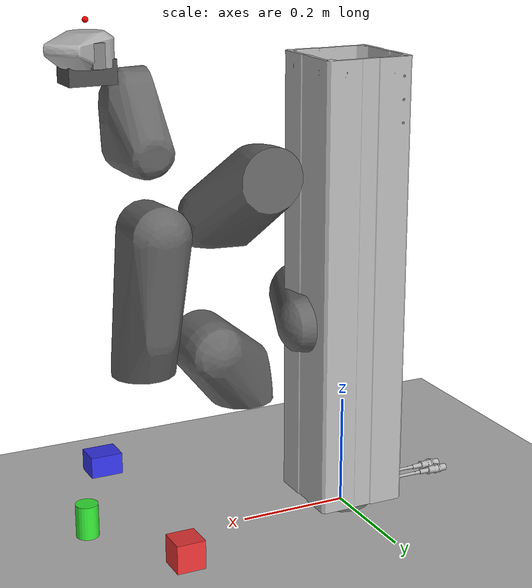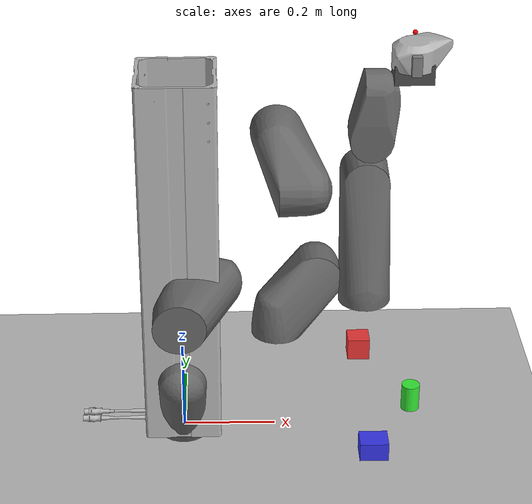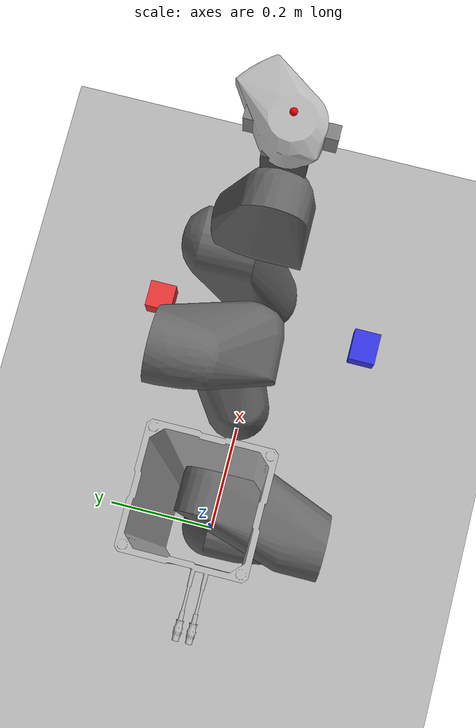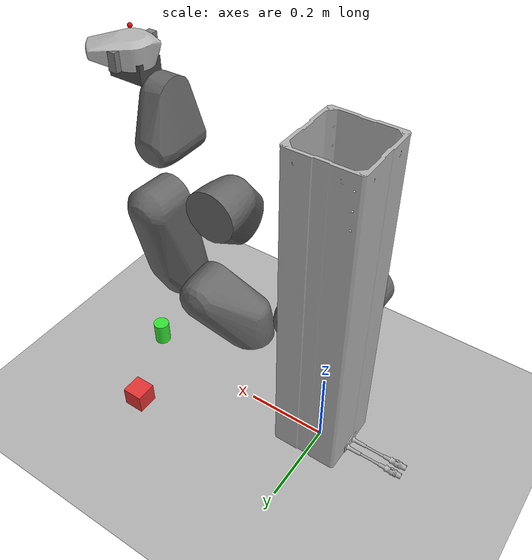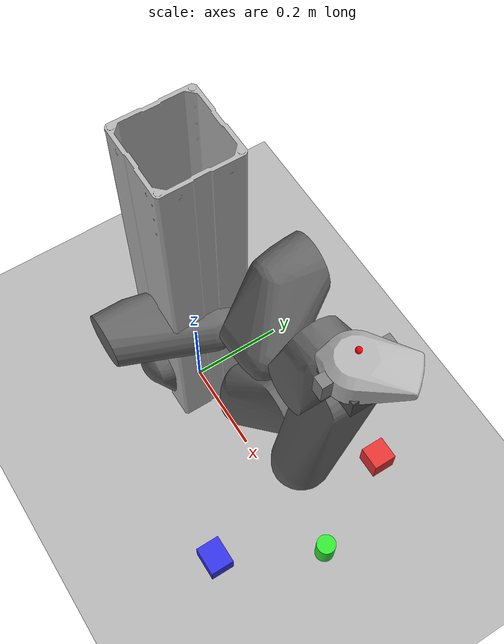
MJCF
<mujoco model="Kuka iiwa14 with Robotiq 2f85 Gripper">
  <compiler angle="radian" meshdir="assets" autolimits="true"/>

  <option cone="elliptic" impratio="10"/>

  <statistic center="0.2 0 0.4" extent="1.2"/>

  <visual>
    <headlight diffuse="0.6 0.6 0.6" ambient="0.3 0.3 0.3" specular="0 0 0"/>
    <rgba haze="0.15 0.25 0.35 1"/>
    <global azimuth="-120" elevation="-20"/>
  </visual>

  <asset>
    <!-- Kuka iiwa14 meshes -->
    <mesh name="base" file="../mujoco_menagerie/kuka_iiwa_14/assets/base.stl"/>
    <mesh name="link1" file="../mujoco_menagerie/kuka_iiwa_14/assets/link1.stl"/>
    <mesh name="link2" file="../mujoco_menagerie/kuka_iiwa_14/assets/link2.stl"/>
    <mesh name="link3" file="../mujoco_menagerie/kuka_iiwa_14/assets/link3.stl"/>
    <mesh name="link4" file="../mujoco_menagerie/kuka_iiwa_14/assets/link4.stl"/>
    <mesh name="link5" file="../mujoco_menagerie/kuka_iiwa_14/assets/link5.stl"/>
    <mesh name="link6" file="../mujoco_menagerie/kuka_iiwa_14/assets/link6.stl"/>
    <mesh name="link7" file="../mujoco_menagerie/kuka_iiwa_14/assets/link7.stl"/>

    <!-- Robotiq 2f85 meshes -->
    <material name="metal" rgba="0.58 0.58 0.58 1"/>
    <material name="silicone" rgba="0.1882 0.1882 0.1882 1"/>
    <material name="gray" rgba="0.4627 0.4627 0.4627 1"/>
    <material name="black" rgba="0.149 0.149 0.149 1"/>

    <mesh name="2f85_base_mount" file="base_mount.stl" scale="0.001 0.001 0.001"/>
    <mesh name="2f85_base" file="base.stl" scale="0.001 0.001 0.001"/>
    <mesh name="2f85_driver" file="driver.stl" scale="0.001 0.001 0.001"/>
    <mesh name="2f85_coupler" file="coupler.stl" scale="0.001 0.001 0.001"/>
    <mesh name="2f85_follower" file="follower.stl" scale="0.001 0.001 0.001"/>
    <mesh name="2f85_pad" file="pad.stl" scale="0.001 0.001 0.001"/>
    <mesh name="2f85_silicone_pad" file="silicone_pad.stl" scale="0.001 0.001 0.001"/>
    <mesh name="2f85_spring_link" file="spring_link.stl" scale="0.001 0.001 0.001"/>

    <!-- Environment textures -->
    <texture type="skybox" builtin="gradient" rgb1="0.3 0.5 0.7" rgb2="0 0 0" width="512" height="3072"/>
    <texture type="2d" name="groundplane" builtin="checker" mark="edge" rgb1="0.2 0.3 0.4" rgb2="0.1 0.2 0.3"
      markrgb="0.8 0.8 0.8" width="300" height="300"/>
    <material name="groundplane" texture="groundplane" texuniform="true" texrepeat="5 5" reflectance="0.2"/>
  </asset>

  <default>
    <joint axis="0 0 1" range="-3.14159 3.14159"/>
    <geom type="mesh" rgba="0.7 0.7 0.7 1"/>

    <default class="gripper">
      <joint axis="1 0 0" range="0 0.8" armature="0.005" damping="0.1"/>
      <geom type="mesh" group="3"/>
    </default>
  </default>

  <worldbody>
    <light pos="0 0 1.5" dir="0 0 -1" directional="true"/>
    <geom name="floor" size="0 0 0.05" type="plane" material="groundplane"/>

    <!-- Objects to manipulate -->
    <body name="red_cube" pos="0.4 0.2 0.075">
      <freejoint name="red_cube_joint"/>
      <geom name="red_cube_geom" type="box" size="0.025 0.025 0.025" rgba="0.9 0.2 0.2 1" mass="0.1"/>
    </body>

    <body name="blue_cube" pos="0.4 -0.2 0.075">
      <freejoint name="blue_cube_joint"/>
      <geom name="blue_cube_geom" type="box" size="0.03 0.025 0.02" rgba="0.2 0.2 0.9 1" mass="0.12"/>
    </body>

    <body name="green_cylinder" pos="0.5 0 0.065">
      <freejoint name="green_cylinder_joint"/>
      <geom name="green_cylinder_geom" type="cylinder" size="0.02 0.03" rgba="0.2 0.9 0.2 1" mass="0.08"/>
    </body>

    <!-- Kuka iiwa14 Robot Arm -->
    <body name="base" pos="0 0 0">
      <geom mesh="base" rgba="0.7 0.7 0.7 1"/>
      <body name="link1" pos="0 0 0.1575">
        <joint name="joint1" axis="0 0 1" range="-2.96706 2.96706"/>
        <geom mesh="link1" rgba="0.4 0.4 0.4 1"/>
        <body name="link2" pos="0 0 0.2025" quat="1 0 1 0">
          <joint name="joint2" axis="0 0 1" range="-2.09440 2.09440"/>
          <geom mesh="link2" rgba="0.4 0.4 0.4 1"/>
          <body name="link3" pos="0 0 0.2045" quat="1 0 -1 0">
            <joint name="joint3" axis="0 0 1" range="-2.96706 2.96706"/>
            <geom mesh="link3" rgba="0.4 0.4 0.4 1"/>
            <body name="link4" pos="0 0 0.2155" quat="1 0 1 0">
              <joint name="joint4" axis="0 0 1" range="-2.09440 2.09440"/>
              <geom mesh="link4" rgba="0.4 0.4 0.4 1"/>
              <body name="link5" pos="0 0 0.1845" quat="1 0 -1 0">
                <joint name="joint5" axis="0 0 1" range="-2.96706 2.96706"/>
                <geom mesh="link5" rgba="0.4 0.4 0.4 1"/>
                <body name="link6" pos="0 0 0.2155" quat="1 0 1 0">
                  <joint name="joint6" axis="0 0 1" range="-2.09440 2.09440"/>
                  <geom mesh="link6" rgba="0.4 0.4 0.4 1"/>
                  <body name="link7" pos="0 0 0.081" quat="1 0 -1 0">
                    <joint name="joint7" axis="0 0 1" range="-3.05433 3.05433"/>
                    <geom mesh="link7" rgba="0.7 0.7 0.7 1"/>

                    <!-- Simple Robotiq 2f85 Style Gripper -->
                    <body name="gripper_base" pos="0 0 0.045">
                      <geom name="gripper_palm" type="box" size="0.04 0.03 0.02" rgba="0.3 0.3 0.3 1"/>

                      <!-- Left finger -->
                      <body name="left_finger" pos="0 0.03 0.03">
                        <joint name="left_finger_joint" class="gripper"/>
                        <geom name="left_finger_geom" type="box" size="0.01 0.03 0.02" rgba="0.5 0.5 0.5 1"/>
                      </body>

                      <!-- Right finger -->
                      <body name="right_finger" pos="0 -0.03 0.03">
                        <joint name="right_finger_joint" class="gripper" range="0 0.8"/>
                        <geom name="right_finger_geom" type="box" size="0.01 0.03 0.02" rgba="0.5 0.5 0.5 1"/>
                      </body>

                      <!-- Gripper tip site for positioning -->
                      <site name="gripper_center" pos="0 0 0.08" size="0.005" rgba="1 0 0 1"/>
                    </body>
                  </body>
                </body>
              </body>
            </body>
          </body>
        </body>
      </body>
    </body>
  </worldbody>

  <!-- Actuators for robot arm and gripper -->
  <actuator>
    <!-- Robot arm actuators -->
    <general name="actuator1" joint="joint1" ctrlrange="-2.96706 2.96706" gainprm="300"/>
    <general name="actuator2" joint="joint2" ctrlrange="-2.09440 2.09440" gainprm="300"/>
    <general name="actuator3" joint="joint3" ctrlrange="-2.96706 2.96706" gainprm="300"/>
    <general name="actuator4" joint="joint4" ctrlrange="-2.09440 2.09440" gainprm="300"/>
    <general name="actuator5" joint="joint5" ctrlrange="-2.96706 2.96706" gainprm="300"/>
    <general name="actuator6" joint="joint6" ctrlrange="-2.09440 2.09440" gainprm="300"/>
    <general name="actuator7" joint="joint7" ctrlrange="-3.05433 3.05433" gainprm="300"/>

    <!-- Gripper actuators -->
    <general name="left_finger_actuator" joint="left_finger_joint" ctrlrange="0 0.8" gainprm="500"/>
    <general name="right_finger_actuator" joint="right_finger_joint" ctrlrange="0 0.8" gainprm="500"/>
  </actuator>

  <!-- Contact properties for grasping -->
  <contact>
    <!-- Enhanced friction for grasping -->
    <pair geom1="left_finger_geom" geom2="red_cube_geom" condim="4" friction="1.5 0.1 0.001"/>
    <pair geom1="right_finger_geom" geom2="red_cube_geom" condim="4" friction="1.5 0.1 0.001"/>
    <pair geom1="left_finger_geom" geom2="blue_cube_geom" condim="4" friction="1.5 0.1 0.001"/>
    <pair geom1="right_finger_geom" geom2="blue_cube_geom" condim="4" friction="1.5 0.1 0.001"/>
    <pair geom1="left_finger_geom" geom2="green_cylinder_geom" condim="4" friction="1.5 0.1 0.001"/>
    <pair geom1="right_finger_geom" geom2="green_cylinder_geom" condim="4" friction="1.5 0.1 0.001"/>
  </contact>

  <!-- Sensors -->
  <sensor>
    <!-- Robot arm joint positions -->
    <jointpos name="joint1_pos" joint="joint1"/>
    <jointpos name="joint2_pos" joint="joint2"/>
    <jointpos name="joint3_pos" joint="joint3"/>
    <jointpos name="joint4_pos" joint="joint4"/>
    <jointpos name="joint5_pos" joint="joint5"/>
    <jointpos name="joint6_pos" joint="joint6"/>
    <jointpos name="joint7_pos" joint="joint7"/>

    <!-- Gripper positions -->
    <jointpos name="left_finger_pos" joint="left_finger_joint"/>
    <jointpos name="right_finger_pos" joint="right_finger_joint"/>
  </sensor>

  <!-- Keyframes for different poses -->
  <keyframe>
    <key name="home" qpos="0 0 0 -1.5708 0 1.5708 0 0 0"/>
    <key name="ready_grasp" qpos="0.2 0.5 0 -1.2 0 1.0 0 0.2 0.2"/>
    <key name="open_gripper" qpos="0 0 0 -1.5708 0 1.5708 0 0 0"/>
    <key name="closed_gripper" qpos="0 0 0 -1.5708 0 1.5708 0 0.6 0.6"/>
  </keyframe>
</mujoco>
